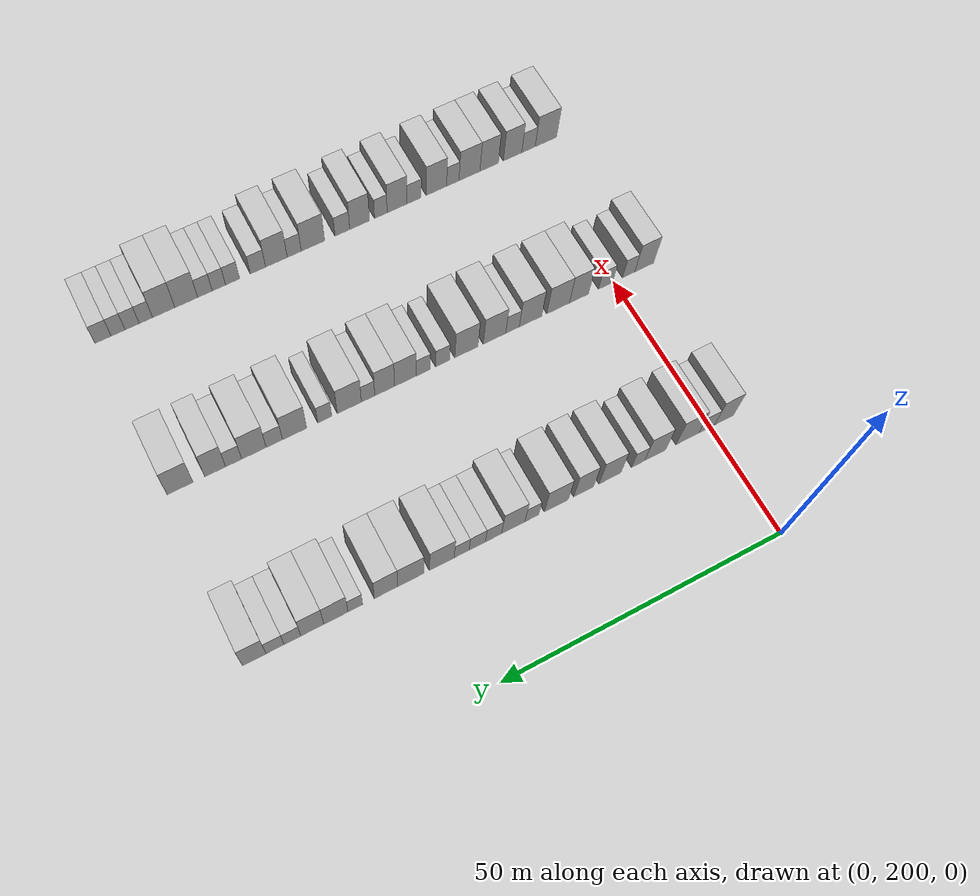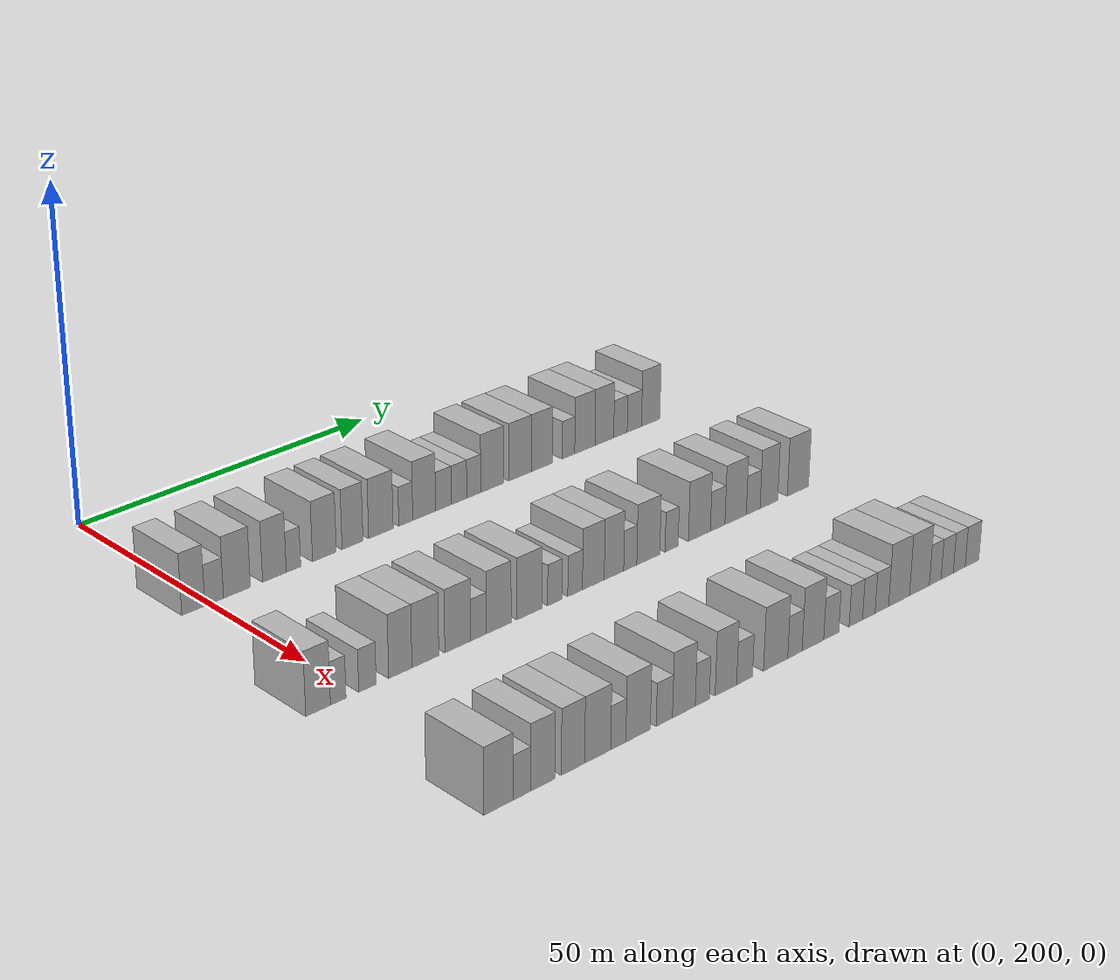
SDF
<sdf version="1.6">
 <world name="default">
  <model name="building_118">
   <static>1</static>
   <pose>25.0000 197.3915 0 0.000000 0.000000 0.000000</pose>
   <link name="link">
    <pose>0 0 4.50 0 0 0</pose>
    <collision name="collision"><geometry><box><size>10.0000 3.6631 9.0000</size></box></geometry></collision>
    <visual name="visual">
     <cast_shadows>0</cast_shadows>
     <geometry><box><size>10.0000 3.6631 9.0000</size></box></geometry>
     <material>
      <script>
       <uri>model://HANNAS_wall/materials/scripts</uri>
       <uri>model://HANNAS_wall/materials/textures</uri>
       <name>vrc/HANNAS_wall</name>
      </script>
     </material>
    </visual>
   </link>
  </model>
  <model name="building_119">
   <static>1</static>
   <pose>25.0000 200.7139 0 0.000000 0.000000 0.000000</pose>
   <link name="link">
    <pose>0 0 3.00 0 0 0</pose>
    <collision name="collision"><geometry><box><size>10.0000 2.9817 6.0000</size></box></geometry></collision>
    <visual name="visual">
     <cast_shadows>0</cast_shadows>
     <geometry><box><size>10.0000 2.9817 6.0000</size></box></geometry>
     <material>
      <script>
       <uri>model://HANNAS_wall/materials/scripts</uri>
       <uri>model://HANNAS_wall/materials/textures</uri>
       <name>vrc/HANNAS_wall</name>
      </script>
     </material>
    </visual>
   </link>
  </model>
  <model name="building_120">
   <static>1</static>
   <pose>25.0000 204.3842 0 0.000000 0.000000 0.000000</pose>
   <link name="link">
    <pose>0 0 4.50 0 0 0</pose>
    <collision name="collision"><geometry><box><size>10.0000 4.3589 9.0000</size></box></geometry></collision>
    <visual name="visual">
     <cast_shadows>0</cast_shadows>
     <geometry><box><size>10.0000 4.3589 9.0000</size></box></geometry>
     <material>
      <script>
       <uri>model://HANNAS_wall/materials/scripts</uri>
       <uri>model://HANNAS_wall/materials/textures</uri>
       <name>vrc/HANNAS_wall</name>
      </script>
     </material>
    </visual>
   </link>
  </model>
  <model name="building_121">
   <static>1</static>
   <pose>25.0000 210.5265 0 0.000000 0.000000 0.000000</pose>
   <link name="link">
    <pose>0 0 4.50 0 0 0</pose>
    <collision name="collision"><geometry><box><size>10.0000 3.9257 9.0000</size></box></geometry></collision>
    <visual name="visual">
     <cast_shadows>0</cast_shadows>
     <geometry><box><size>10.0000 3.9257 9.0000</size></box></geometry>
     <material>
      <script>
       <uri>model://HANNAS_wall/materials/scripts</uri>
       <uri>model://HANNAS_wall/materials/textures</uri>
       <name>vrc/HANNAS_wall</name>
      </script>
     </material>
    </visual>
   </link>
  </model>
  <model name="building_122">
   <static>1</static>
   <pose>25.0000 213.7019 0 0.000000 0.000000 0.000000</pose>
   <link name="link">
    <pose>0 0 3.00 0 0 0</pose>
    <collision name="collision"><geometry><box><size>10.0000 2.4253 6.0000</size></box></geometry></collision>
    <visual name="visual">
     <cast_shadows>0</cast_shadows>
     <geometry><box><size>10.0000 2.4253 6.0000</size></box></geometry>
     <material>
      <script>
       <uri>model://HANNAS_wall/materials/scripts</uri>
       <uri>model://HANNAS_wall/materials/textures</uri>
       <name>vrc/HANNAS_wall</name>
      </script>
     </material>
    </visual>
   </link>
  </model>
  <model name="building_123">
   <static>1</static>
   <pose>25.0000 218.9449 0 0.000000 0.000000 0.000000</pose>
   <link name="link">
    <pose>0 0 4.50 0 0 0</pose>
    <collision name="collision"><geometry><box><size>10.0000 4.0606 9.0000</size></box></geometry></collision>
    <visual name="visual">
     <cast_shadows>0</cast_shadows>
     <geometry><box><size>10.0000 4.0606 9.0000</size></box></geometry>
     <material>
      <script>
       <uri>model://HANNAS_wall/materials/scripts</uri>
       <uri>model://HANNAS_wall/materials/textures</uri>
       <name>vrc/HANNAS_wall</name>
      </script>
     </material>
    </visual>
   </link>
  </model>
  <model name="building_124">
   <static>1</static>
   <pose>25.0000 223.7944 0 0.000000 0.000000 0.000000</pose>
   <link name="link">
    <pose>0 0 4.50 0 0 0</pose>
    <collision name="collision"><geometry><box><size>10.0000 3.6385 9.0000</size></box></geometry></collision>
    <visual name="visual">
     <cast_shadows>0</cast_shadows>
     <geometry><box><size>10.0000 3.6385 9.0000</size></box></geometry>
     <material>
      <script>
       <uri>model://HANNAS_wall/materials/scripts</uri>
       <uri>model://HANNAS_wall/materials/textures</uri>
       <name>vrc/HANNAS_wall</name>
      </script>
     </material>
    </visual>
   </link>
  </model>
  <model name="building_125">
   <static>1</static>
   <pose>25.0000 228.7863 0 0.000000 0.000000 0.000000</pose>
   <link name="link">
    <pose>0 0 4.50 0 0 0</pose>
    <collision name="collision"><geometry><box><size>10.0000 4.3454 9.0000</size></box></geometry></collision>
    <visual name="visual">
     <cast_shadows>0</cast_shadows>
     <geometry><box><size>10.0000 4.3454 9.0000</size></box></geometry>
     <material>
      <script>
       <uri>model://HANNAS_wall/materials/scripts</uri>
       <uri>model://HANNAS_wall/materials/textures</uri>
       <name>vrc/HANNAS_wall</name>
      </script>
     </material>
    </visual>
   </link>
  </model>
  <model name="building_126">
   <static>1</static>
   <pose>25.0000 233.2173 0 0.000000 0.000000 0.000000</pose>
   <link name="link">
    <pose>0 0 3.00 0 0 0</pose>
    <collision name="collision"><geometry><box><size>10.0000 2.5165 6.0000</size></box></geometry></collision>
    <visual name="visual">
     <cast_shadows>0</cast_shadows>
     <geometry><box><size>10.0000 2.5165 6.0000</size></box></geometry>
     <material>
      <script>
       <uri>model://HANNAS_wall/materials/scripts</uri>
       <uri>model://HANNAS_wall/materials/textures</uri>
       <name>vrc/HANNAS_wall</name>
      </script>
     </material>
    </visual>
   </link>
  </model>
  <model name="building_127">
   <static>1</static>
   <pose>25.0000 236.5617 0 0.000000 0.000000 0.000000</pose>
   <link name="link">
    <pose>0 0 4.50 0 0 0</pose>
    <collision name="collision"><geometry><box><size>10.0000 4.1724 9.0000</size></box></geometry></collision>
    <visual name="visual">
     <cast_shadows>0</cast_shadows>
     <geometry><box><size>10.0000 4.1724 9.0000</size></box></geometry>
     <material>
      <script>
       <uri>model://HANNAS_wall/materials/scripts</uri>
       <uri>model://HANNAS_wall/materials/textures</uri>
       <name>vrc/HANNAS_wall</name>
      </script>
     </material>
    </visual>
   </link>
  </model>
  <model name="building_128">
   <static>1</static>
   <pose>25.0000 240.0873 0 0.000000 0.000000 0.000000</pose>
   <link name="link">
    <pose>0 0 3.00 0 0 0</pose>
    <collision name="collision"><geometry><box><size>10.0000 2.8788 6.0000</size></box></geometry></collision>
    <visual name="visual">
     <cast_shadows>0</cast_shadows>
     <geometry><box><size>10.0000 2.8788 6.0000</size></box></geometry>
     <material>
      <script>
       <uri>model://HANNAS_wall/materials/scripts</uri>
       <uri>model://HANNAS_wall/materials/textures</uri>
       <name>vrc/HANNAS_wall</name>
      </script>
     </material>
    </visual>
   </link>
  </model>
  <model name="building_129">
   <static>1</static>
   <pose>25.0000 242.9705 0 0.000000 0.000000 0.000000</pose>
   <link name="link">
    <pose>0 0 3.00 0 0 0</pose>
    <collision name="collision"><geometry><box><size>10.0000 2.8876 6.0000</size></box></geometry></collision>
    <visual name="visual">
     <cast_shadows>0</cast_shadows>
     <geometry><box><size>10.0000 2.8876 6.0000</size></box></geometry>
     <material>
      <script>
       <uri>model://HANNAS_wall/materials/scripts</uri>
       <uri>model://HANNAS_wall/materials/textures</uri>
       <name>vrc/HANNAS_wall</name>
      </script>
     </material>
    </visual>
   </link>
  </model>
  <model name="building_130">
   <static>1</static>
   <pose>25.0000 245.7315 0 0.000000 0.000000 0.000000</pose>
   <link name="link">
    <pose>0 0 3.00 0 0 0</pose>
    <collision name="collision"><geometry><box><size>10.0000 2.6344 6.0000</size></box></geometry></collision>
    <visual name="visual">
     <cast_shadows>0</cast_shadows>
     <geometry><box><size>10.0000 2.6344 6.0000</size></box></geometry>
     <material>
      <script>
       <uri>model://HANNAS_wall/materials/scripts</uri>
       <uri>model://HANNAS_wall/materials/textures</uri>
       <name>vrc/HANNAS_wall</name>
      </script>
     </material>
    </visual>
   </link>
  </model>
  <model name="building_131">
   <static>1</static>
   <pose>25.0000 249.2120 0 0.000000 0.000000 0.000000</pose>
   <link name="link">
    <pose>0 0 4.50 0 0 0</pose>
    <collision name="collision"><geometry><box><size>10.0000 4.3265 9.0000</size></box></geometry></collision>
    <visual name="visual">
     <cast_shadows>0</cast_shadows>
     <geometry><box><size>10.0000 4.3265 9.0000</size></box></geometry>
     <material>
      <script>
       <uri>model://HANNAS_wall/materials/scripts</uri>
       <uri>model://HANNAS_wall/materials/textures</uri>
       <name>vrc/HANNAS_wall</name>
      </script>
     </material>
    </visual>
   </link>
  </model>
  <model name="building_132">
   <static>1</static>
   <pose>25.0000 254.6125 0 0.000000 0.000000 0.000000</pose>
   <link name="link">
    <pose>0 0 4.50 0 0 0</pose>
    <collision name="collision"><geometry><box><size>10.0000 4.4747 9.0000</size></box></geometry></collision>
    <visual name="visual">
     <cast_shadows>0</cast_shadows>
     <geometry><box><size>10.0000 4.4747 9.0000</size></box></geometry>
     <material>
      <script>
       <uri>model://HANNAS_wall/materials/scripts</uri>
       <uri>model://HANNAS_wall/materials/textures</uri>
       <name>vrc/HANNAS_wall</name>
      </script>
     </material>
    </visual>
   </link>
  </model>
  <model name="building_133">
   <static>1</static>
   <pose>25.0000 258.8534 0 0.000000 0.000000 0.000000</pose>
   <link name="link">
    <pose>0 0 4.50 0 0 0</pose>
    <collision name="collision"><geometry><box><size>10.0000 4.0072 9.0000</size></box></geometry></collision>
    <visual name="visual">
     <cast_shadows>0</cast_shadows>
     <geometry><box><size>10.0000 4.0072 9.0000</size></box></geometry>
     <material>
      <script>
       <uri>model://HANNAS_wall/materials/scripts</uri>
       <uri>model://HANNAS_wall/materials/textures</uri>
       <name>vrc/HANNAS_wall</name>
      </script>
     </material>
    </visual>
   </link>
  </model>
  <model name="building_134">
   <static>1</static>
   <pose>25.0000 264.0975 0 0.000000 0.000000 0.000000</pose>
   <link name="link">
    <pose>0 0 3.00 0 0 0</pose>
    <collision name="collision"><geometry><box><size>10.0000 2.4809 6.0000</size></box></geometry></collision>
    <visual name="visual">
     <cast_shadows>0</cast_shadows>
     <geometry><box><size>10.0000 2.4809 6.0000</size></box></geometry>
     <material>
      <script>
       <uri>model://HANNAS_wall/materials/scripts</uri>
       <uri>model://HANNAS_wall/materials/textures</uri>
       <name>vrc/HANNAS_wall</name>
      </script>
     </material>
    </visual>
   </link>
  </model>
  <model name="building_135">
   <static>1</static>
   <pose>25.0000 267.3804 0 0.000000 0.000000 0.000000</pose>
   <link name="link">
    <pose>0 0 4.50 0 0 0</pose>
    <collision name="collision"><geometry><box><size>10.0000 4.0848 9.0000</size></box></geometry></collision>
    <visual name="visual">
     <cast_shadows>0</cast_shadows>
     <geometry><box><size>10.0000 4.0848 9.0000</size></box></geometry>
     <material>
      <script>
       <uri>model://HANNAS_wall/materials/scripts</uri>
       <uri>model://HANNAS_wall/materials/textures</uri>
       <name>vrc/HANNAS_wall</name>
      </script>
     </material>
    </visual>
   </link>
  </model>
  <model name="building_136">
   <static>1</static>
   <pose>25.0000 271.3486 0 0.000000 0.000000 0.000000</pose>
   <link name="link">
    <pose>0 0 4.50 0 0 0</pose>
    <collision name="collision"><geometry><box><size>10.0000 3.8515 9.0000</size></box></geometry></collision>
    <visual name="visual">
     <cast_shadows>0</cast_shadows>
     <geometry><box><size>10.0000 3.8515 9.0000</size></box></geometry>
     <material>
      <script>
       <uri>model://HANNAS_wall/materials/scripts</uri>
       <uri>model://HANNAS_wall/materials/textures</uri>
       <name>vrc/HANNAS_wall</name>
      </script>
     </material>
    </visual>
   </link>
  </model>
  <model name="building_137">
   <static>1</static>
   <pose>25.0000 274.6631 0 0.000000 0.000000 0.000000</pose>
   <link name="link">
    <pose>0 0 3.00 0 0 0</pose>
    <collision name="collision"><geometry><box><size>10.0000 2.7775 6.0000</size></box></geometry></collision>
    <visual name="visual">
     <cast_shadows>0</cast_shadows>
     <geometry><box><size>10.0000 2.7775 6.0000</size></box></geometry>
     <material>
      <script>
       <uri>model://HANNAS_wall/materials/scripts</uri>
       <uri>model://HANNAS_wall/materials/textures</uri>
       <name>vrc/HANNAS_wall</name>
      </script>
     </material>
    </visual>
   </link>
  </model>
  <model name="building_138">
   <static>1</static>
   <pose>25.0000 277.5473 0 0.000000 0.000000 0.000000</pose>
   <link name="link">
    <pose>0 0 3.00 0 0 0</pose>
    <collision name="collision"><geometry><box><size>10.0000 2.9910 6.0000</size></box></geometry></collision>
    <visual name="visual">
     <cast_shadows>0</cast_shadows>
     <geometry><box><size>10.0000 2.9910 6.0000</size></box></geometry>
     <material>
      <script>
       <uri>model://HANNAS_wall/materials/scripts</uri>
       <uri>model://HANNAS_wall/materials/textures</uri>
       <name>vrc/HANNAS_wall</name>
      </script>
     </material>
    </visual>
   </link>
  </model>
  <model name="building_139">
   <static>1</static>
   <pose>25.0000 280.9775 0 0.000000 0.000000 0.000000</pose>
   <link name="link">
    <pose>0 0 4.50 0 0 0</pose>
    <collision name="collision"><geometry><box><size>10.0000 3.8694 9.0000</size></box></geometry></collision>
    <visual name="visual">
     <cast_shadows>0</cast_shadows>
     <geometry><box><size>10.0000 3.8694 9.0000</size></box></geometry>
     <material>
      <script>
       <uri>model://HANNAS_wall/materials/scripts</uri>
       <uri>model://HANNAS_wall/materials/textures</uri>
       <name>vrc/HANNAS_wall</name>
      </script>
     </material>
    </visual>
   </link>
  </model>
  <model name="building_258">
   <static>1</static>
   <pose>55.0000 193.9920 0 0.000000 0.000000 0.000000</pose>
   <link name="link">
    <pose>0 0 4.50 0 0 0</pose>
    <collision name="collision"><geometry><box><size>10.0000 3.7857 9.0000</size></box></geometry></collision>
    <visual name="visual">
     <cast_shadows>0</cast_shadows>
     <geometry><box><size>10.0000 3.7857 9.0000</size></box></geometry>
     <material>
      <script>
       <uri>model://HANNAS_wall/materials/scripts</uri>
       <uri>model://HANNAS_wall/materials/textures</uri>
       <name>vrc/HANNAS_wall</name>
      </script>
     </material>
    </visual>
   </link>
  </model>
  <model name="building_259">
   <static>1</static>
   <pose>55.0000 197.0900 0 0.000000 0.000000 0.000000</pose>
   <link name="link">
    <pose>0 0 3.00 0 0 0</pose>
    <collision name="collision"><geometry><box><size>10.0000 2.4102 6.0000</size></box></geometry></collision>
    <visual name="visual">
     <cast_shadows>0</cast_shadows>
     <geometry><box><size>10.0000 2.4102 6.0000</size></box></geometry>
     <material>
      <script>
       <uri>model://HANNAS_wall/materials/scripts</uri>
       <uri>model://HANNAS_wall/materials/textures</uri>
       <name>vrc/HANNAS_wall</name>
      </script>
     </material>
    </visual>
   </link>
  </model>
  <model name="building_260">
   <static>1</static>
   <pose>55.0000 201.6686 0 0.000000 0.000000 0.000000</pose>
   <link name="link">
    <pose>0 0 3.00 0 0 0</pose>
    <collision name="collision"><geometry><box><size>10.0000 2.7471 6.0000</size></box></geometry></collision>
    <visual name="visual">
     <cast_shadows>0</cast_shadows>
     <geometry><box><size>10.0000 2.7471 6.0000</size></box></geometry>
     <material>
      <script>
       <uri>model://HANNAS_wall/materials/scripts</uri>
       <uri>model://HANNAS_wall/materials/textures</uri>
       <name>vrc/HANNAS_wall</name>
      </script>
     </material>
    </visual>
   </link>
  </model>
  <model name="building_261">
   <static>1</static>
   <pose>55.0000 206.9123 0 0.000000 0.000000 0.000000</pose>
   <link name="link">
    <pose>0 0 4.50 0 0 0</pose>
    <collision name="collision"><geometry><box><size>10.0000 3.7403 9.0000</size></box></geometry></collision>
    <visual name="visual">
     <cast_shadows>0</cast_shadows>
     <geometry><box><size>10.0000 3.7403 9.0000</size></box></geometry>
     <material>
      <script>
       <uri>model://HANNAS_wall/materials/scripts</uri>
       <uri>model://HANNAS_wall/materials/textures</uri>
       <name>vrc/HANNAS_wall</name>
      </script>
     </material>
    </visual>
   </link>
  </model>
  <model name="building_262">
   <static>1</static>
   <pose>55.0000 210.9835 0 0.000000 0.000000 0.000000</pose>
   <link name="link">
    <pose>0 0 4.50 0 0 0</pose>
    <collision name="collision"><geometry><box><size>10.0000 4.4022 9.0000</size></box></geometry></collision>
    <visual name="visual">
     <cast_shadows>0</cast_shadows>
     <geometry><box><size>10.0000 4.4022 9.0000</size></box></geometry>
     <material>
      <script>
       <uri>model://HANNAS_wall/materials/scripts</uri>
       <uri>model://HANNAS_wall/materials/textures</uri>
       <name>vrc/HANNAS_wall</name>
      </script>
     </material>
    </visual>
   </link>
  </model>
  <model name="building_263">
   <static>1</static>
   <pose>55.0000 216.3512 0 0.000000 0.000000 0.000000</pose>
   <link name="link">
    <pose>0 0 4.50 0 0 0</pose>
    <collision name="collision"><geometry><box><size>10.0000 4.3332 9.0000</size></box></geometry></collision>
    <visual name="visual">
     <cast_shadows>0</cast_shadows>
     <geometry><box><size>10.0000 4.3332 9.0000</size></box></geometry>
     <material>
      <script>
       <uri>model://HANNAS_wall/materials/scripts</uri>
       <uri>model://HANNAS_wall/materials/textures</uri>
       <name>vrc/HANNAS_wall</name>
      </script>
     </material>
    </visual>
   </link>
  </model>
  <model name="building_264">
   <static>1</static>
   <pose>55.0000 219.8237 0 0.000000 0.000000 0.000000</pose>
   <link name="link">
    <pose>0 0 3.00 0 0 0</pose>
    <collision name="collision"><geometry><box><size>10.0000 2.6118 6.0000</size></box></geometry></collision>
    <visual name="visual">
     <cast_shadows>0</cast_shadows>
     <geometry><box><size>10.0000 2.6118 6.0000</size></box></geometry>
     <material>
      <script>
       <uri>model://HANNAS_wall/materials/scripts</uri>
       <uri>model://HANNAS_wall/materials/textures</uri>
       <name>vrc/HANNAS_wall</name>
      </script>
     </material>
    </visual>
   </link>
  </model>
  <model name="building_265">
   <static>1</static>
   <pose>55.0000 223.2672 0 0.000000 0.000000 0.000000</pose>
   <link name="link">
    <pose>0 0 4.50 0 0 0</pose>
    <collision name="collision"><geometry><box><size>10.0000 4.2752 9.0000</size></box></geometry></collision>
    <visual name="visual">
     <cast_shadows>0</cast_shadows>
     <geometry><box><size>10.0000 4.2752 9.0000</size></box></geometry>
     <material>
      <script>
       <uri>model://HANNAS_wall/materials/scripts</uri>
       <uri>model://HANNAS_wall/materials/textures</uri>
       <name>vrc/HANNAS_wall</name>
      </script>
     </material>
    </visual>
   </link>
  </model>
  <model name="building_266">
   <static>1</static>
   <pose>55.0000 228.5992 0 0.000000 0.000000 0.000000</pose>
   <link name="link">
    <pose>0 0 4.50 0 0 0</pose>
    <collision name="collision"><geometry><box><size>10.0000 4.3890 9.0000</size></box></geometry></collision>
    <visual name="visual">
     <cast_shadows>0</cast_shadows>
     <geometry><box><size>10.0000 4.3890 9.0000</size></box></geometry>
     <material>
      <script>
       <uri>model://HANNAS_wall/materials/scripts</uri>
       <uri>model://HANNAS_wall/materials/textures</uri>
       <name>vrc/HANNAS_wall</name>
      </script>
     </material>
    </visual>
   </link>
  </model>
  <model name="building_267">
   <static>1</static>
   <pose>55.0000 233.0921 0 0.000000 0.000000 0.000000</pose>
   <link name="link">
    <pose>0 0 3.00 0 0 0</pose>
    <collision name="collision"><geometry><box><size>10.0000 2.5968 6.0000</size></box></geometry></collision>
    <visual name="visual">
     <cast_shadows>0</cast_shadows>
     <geometry><box><size>10.0000 2.5968 6.0000</size></box></geometry>
     <material>
      <script>
       <uri>model://HANNAS_wall/materials/scripts</uri>
       <uri>model://HANNAS_wall/materials/textures</uri>
       <name>vrc/HANNAS_wall</name>
      </script>
     </material>
    </visual>
   </link>
  </model>
  <model name="building_268">
   <static>1</static>
   <pose>55.0000 236.7168 0 0.000000 0.000000 0.000000</pose>
   <link name="link">
    <pose>0 0 3.00 0 0 0</pose>
    <collision name="collision"><geometry><box><size>10.0000 2.6526 6.0000</size></box></geometry></collision>
    <visual name="visual">
     <cast_shadows>0</cast_shadows>
     <geometry><box><size>10.0000 2.6526 6.0000</size></box></geometry>
     <material>
      <script>
       <uri>model://HANNAS_wall/materials/scripts</uri>
       <uri>model://HANNAS_wall/materials/textures</uri>
       <name>vrc/HANNAS_wall</name>
      </script>
     </material>
    </visual>
   </link>
  </model>
  <model name="building_269">
   <static>1</static>
   <pose>55.0000 240.0320 0 0.000000 0.000000 0.000000</pose>
   <link name="link">
    <pose>0 0 4.50 0 0 0</pose>
    <collision name="collision"><geometry><box><size>10.0000 3.9778 9.0000</size></box></geometry></collision>
    <visual name="visual">
     <cast_shadows>0</cast_shadows>
     <geometry><box><size>10.0000 3.9778 9.0000</size></box></geometry>
     <material>
      <script>
       <uri>model://HANNAS_wall/materials/scripts</uri>
       <uri>model://HANNAS_wall/materials/textures</uri>
       <name>vrc/HANNAS_wall</name>
      </script>
     </material>
    </visual>
   </link>
  </model>
  <model name="building_270">
   <static>1</static>
   <pose>55.0000 243.8210 0 0.000000 0.000000 0.000000</pose>
   <link name="link">
    <pose>0 0 4.50 0 0 0</pose>
    <collision name="collision"><geometry><box><size>10.0000 3.6003 9.0000</size></box></geometry></collision>
    <visual name="visual">
     <cast_shadows>0</cast_shadows>
     <geometry><box><size>10.0000 3.6003 9.0000</size></box></geometry>
     <material>
      <script>
       <uri>model://HANNAS_wall/materials/scripts</uri>
       <uri>model://HANNAS_wall/materials/textures</uri>
       <name>vrc/HANNAS_wall</name>
      </script>
     </material>
    </visual>
   </link>
  </model>
  <model name="building_271">
   <static>1</static>
   <pose>55.0000 246.8459 0 0.000000 0.000000 0.000000</pose>
   <link name="link">
    <pose>0 0 3.00 0 0 0</pose>
    <collision name="collision"><geometry><box><size>10.0000 2.4494 6.0000</size></box></geometry></collision>
    <visual name="visual">
     <cast_shadows>0</cast_shadows>
     <geometry><box><size>10.0000 2.4494 6.0000</size></box></geometry>
     <material>
      <script>
       <uri>model://HANNAS_wall/materials/scripts</uri>
       <uri>model://HANNAS_wall/materials/textures</uri>
       <name>vrc/HANNAS_wall</name>
      </script>
     </material>
    </visual>
   </link>
  </model>
  <model name="building_272">
   <static>1</static>
   <pose>55.0000 250.2554 0 0.000000 0.000000 0.000000</pose>
   <link name="link">
    <pose>0 0 4.50 0 0 0</pose>
    <collision name="collision"><geometry><box><size>10.0000 4.3697 9.0000</size></box></geometry></collision>
    <visual name="visual">
     <cast_shadows>0</cast_shadows>
     <geometry><box><size>10.0000 4.3697 9.0000</size></box></geometry>
     <material>
      <script>
       <uri>model://HANNAS_wall/materials/scripts</uri>
       <uri>model://HANNAS_wall/materials/textures</uri>
       <name>vrc/HANNAS_wall</name>
      </script>
     </material>
    </visual>
   </link>
  </model>
  <model name="building_273">
   <static>1</static>
   <pose>55.0000 254.6990 0 0.000000 0.000000 0.000000</pose>
   <link name="link">
    <pose>0 0 3.00 0 0 0</pose>
    <collision name="collision"><geometry><box><size>10.0000 2.5176 6.0000</size></box></geometry></collision>
    <visual name="visual">
     <cast_shadows>0</cast_shadows>
     <geometry><box><size>10.0000 2.5176 6.0000</size></box></geometry>
     <material>
      <script>
       <uri>model://HANNAS_wall/materials/scripts</uri>
       <uri>model://HANNAS_wall/materials/textures</uri>
       <name>vrc/HANNAS_wall</name>
      </script>
     </material>
    </visual>
   </link>
  </model>
  <model name="building_274">
   <static>1</static>
   <pose>55.0000 260.1152 0 0.000000 0.000000 0.000000</pose>
   <link name="link">
    <pose>0 0 4.50 0 0 0</pose>
    <collision name="collision"><geometry><box><size>10.0000 4.3148 9.0000</size></box></geometry></collision>
    <visual name="visual">
     <cast_shadows>0</cast_shadows>
     <geometry><box><size>10.0000 4.3148 9.0000</size></box></geometry>
     <material>
      <script>
       <uri>model://HANNAS_wall/materials/scripts</uri>
       <uri>model://HANNAS_wall/materials/textures</uri>
       <name>vrc/HANNAS_wall</name>
      </script>
     </material>
    </visual>
   </link>
  </model>
  <model name="building_275">
   <static>1</static>
   <pose>55.0000 263.7176 0 0.000000 0.000000 0.000000</pose>
   <link name="link">
    <pose>0 0 3.00 0 0 0</pose>
    <collision name="collision"><geometry><box><size>10.0000 2.8900 6.0000</size></box></geometry></collision>
    <visual name="visual">
     <cast_shadows>0</cast_shadows>
     <geometry><box><size>10.0000 2.8900 6.0000</size></box></geometry>
     <material>
      <script>
       <uri>model://HANNAS_wall/materials/scripts</uri>
       <uri>model://HANNAS_wall/materials/textures</uri>
       <name>vrc/HANNAS_wall</name>
      </script>
     </material>
    </visual>
   </link>
  </model>
  <model name="building_276">
   <static>1</static>
   <pose>55.0000 267.3148 0 0.000000 0.000000 0.000000</pose>
   <link name="link">
    <pose>0 0 4.50 0 0 0</pose>
    <collision name="collision"><geometry><box><size>10.0000 4.3044 9.0000</size></box></geometry></collision>
    <visual name="visual">
     <cast_shadows>0</cast_shadows>
     <geometry><box><size>10.0000 4.3044 9.0000</size></box></geometry>
     <material>
      <script>
       <uri>model://HANNAS_wall/materials/scripts</uri>
       <uri>model://HANNAS_wall/materials/textures</uri>
       <name>vrc/HANNAS_wall</name>
      </script>
     </material>
    </visual>
   </link>
  </model>
  <model name="building_277">
   <static>1</static>
   <pose>55.0000 270.8719 0 0.000000 0.000000 0.000000</pose>
   <link name="link">
    <pose>0 0 3.00 0 0 0</pose>
    <collision name="collision"><geometry><box><size>10.0000 2.8098 6.0000</size></box></geometry></collision>
    <visual name="visual">
     <cast_shadows>0</cast_shadows>
     <geometry><box><size>10.0000 2.8098 6.0000</size></box></geometry>
     <material>
      <script>
       <uri>model://HANNAS_wall/materials/scripts</uri>
       <uri>model://HANNAS_wall/materials/textures</uri>
       <name>vrc/HANNAS_wall</name>
      </script>
     </material>
    </visual>
   </link>
  </model>
  <model name="building_278">
   <static>1</static>
   <pose>55.0000 274.0915 0 0.000000 0.000000 0.000000</pose>
   <link name="link">
    <pose>0 0 4.50 0 0 0</pose>
    <collision name="collision"><geometry><box><size>10.0000 3.6293 9.0000</size></box></geometry></collision>
    <visual name="visual">
     <cast_shadows>0</cast_shadows>
     <geometry><box><size>10.0000 3.6293 9.0000</size></box></geometry>
     <material>
      <script>
       <uri>model://HANNAS_wall/materials/scripts</uri>
       <uri>model://HANNAS_wall/materials/textures</uri>
       <name>vrc/HANNAS_wall</name>
      </script>
     </material>
    </visual>
   </link>
  </model>
  <model name="building_279">
   <static>1</static>
   <pose>55.0000 280.1415 0 0.000000 0.000000 0.000000</pose>
   <link name="link">
    <pose>0 0 4.50 0 0 0</pose>
    <collision name="collision"><geometry><box><size>10.0000 4.4707 9.0000</size></box></geometry></collision>
    <visual name="visual">
     <cast_shadows>0</cast_shadows>
     <geometry><box><size>10.0000 4.4707 9.0000</size></box></geometry>
     <material>
      <script>
       <uri>model://HANNAS_wall/materials/scripts</uri>
       <uri>model://HANNAS_wall/materials/textures</uri>
       <name>vrc/HANNAS_wall</name>
      </script>
     </material>
    </visual>
   </link>
  </model>
  <model name="building_389">
   <static>1</static>
   <pose>85.0000 196.0585 0 0.000000 0.000000 0.000000</pose>
   <link name="link">
    <pose>0 0 4.50 0 0 0</pose>
    <collision name="collision"><geometry><box><size>10.0000 4.4190 9.0000</size></box></geometry></collision>
    <visual name="visual">
     <cast_shadows>0</cast_shadows>
     <geometry><box><size>10.0000 4.4190 9.0000</size></box></geometry>
     <material>
      <script>
       <uri>model://HANNAS_wall/materials/scripts</uri>
       <uri>model://HANNAS_wall/materials/textures</uri>
       <name>vrc/HANNAS_wall</name>
      </script>
     </material>
    </visual>
   </link>
  </model>
  <model name="building_390">
   <static>1</static>
   <pose>85.0000 199.6556 0 0.000000 0.000000 0.000000</pose>
   <link name="link">
    <pose>0 0 3.00 0 0 0</pose>
    <collision name="collision"><geometry><box><size>10.0000 2.7754 6.0000</size></box></geometry></collision>
    <visual name="visual">
     <cast_shadows>0</cast_shadows>
     <geometry><box><size>10.0000 2.7754 6.0000</size></box></geometry>
     <material>
      <script>
       <uri>model://HANNAS_wall/materials/scripts</uri>
       <uri>model://HANNAS_wall/materials/textures</uri>
       <name>vrc/HANNAS_wall</name>
      </script>
     </material>
    </visual>
   </link>
  </model>
  <model name="building_391">
   <static>1</static>
   <pose>85.0000 202.9300 0 0.000000 0.000000 0.000000</pose>
   <link name="link">
    <pose>0 0 4.50 0 0 0</pose>
    <collision name="collision"><geometry><box><size>10.0000 3.7733 9.0000</size></box></geometry></collision>
    <visual name="visual">
     <cast_shadows>0</cast_shadows>
     <geometry><box><size>10.0000 3.7733 9.0000</size></box></geometry>
     <material>
      <script>
       <uri>model://HANNAS_wall/materials/scripts</uri>
       <uri>model://HANNAS_wall/materials/textures</uri>
       <name>vrc/HANNAS_wall</name>
      </script>
     </material>
    </visual>
   </link>
  </model>
  <model name="building_392">
   <static>1</static>
   <pose>85.0000 207.6820 0 0.000000 0.000000 0.000000</pose>
   <link name="link">
    <pose>0 0 4.50 0 0 0</pose>
    <collision name="collision"><geometry><box><size>10.0000 3.7307 9.0000</size></box></geometry></collision>
    <visual name="visual">
     <cast_shadows>0</cast_shadows>
     <geometry><box><size>10.0000 3.7307 9.0000</size></box></geometry>
     <material>
      <script>
       <uri>model://HANNAS_wall/materials/scripts</uri>
       <uri>model://HANNAS_wall/materials/textures</uri>
       <name>vrc/HANNAS_wall</name>
      </script>
     </material>
    </visual>
   </link>
  </model>
  <model name="building_393">
   <static>1</static>
   <pose>85.0000 211.6618 0 0.000000 0.000000 0.000000</pose>
   <link name="link">
    <pose>0 0 4.50 0 0 0</pose>
    <collision name="collision"><geometry><box><size>10.0000 4.2290 9.0000</size></box></geometry></collision>
    <visual name="visual">
     <cast_shadows>0</cast_shadows>
     <geometry><box><size>10.0000 4.2290 9.0000</size></box></geometry>
     <material>
      <script>
       <uri>model://HANNAS_wall/materials/scripts</uri>
       <uri>model://HANNAS_wall/materials/textures</uri>
       <name>vrc/HANNAS_wall</name>
      </script>
     </material>
    </visual>
   </link>
  </model>
  <model name="building_394">
   <static>1</static>
   <pose>85.0000 215.0228 0 0.000000 0.000000 0.000000</pose>
   <link name="link">
    <pose>0 0 3.00 0 0 0</pose>
    <collision name="collision"><geometry><box><size>10.0000 2.4929 6.0000</size></box></geometry></collision>
    <visual name="visual">
     <cast_shadows>0</cast_shadows>
     <geometry><box><size>10.0000 2.4929 6.0000</size></box></geometry>
     <material>
      <script>
       <uri>model://HANNAS_wall/materials/scripts</uri>
       <uri>model://HANNAS_wall/materials/textures</uri>
       <name>vrc/HANNAS_wall</name>
      </script>
     </material>
    </visual>
   </link>
  </model>
  <model name="building_395">
   <static>1</static>
   <pose>85.0000 218.3076 0 0.000000 0.000000 0.000000</pose>
   <link name="link">
    <pose>0 0 4.50 0 0 0</pose>
    <collision name="collision"><geometry><box><size>10.0000 4.0768 9.0000</size></box></geometry></collision>
    <visual name="visual">
     <cast_shadows>0</cast_shadows>
     <geometry><box><size>10.0000 4.0768 9.0000</size></box></geometry>
     <material>
      <script>
       <uri>model://HANNAS_wall/materials/scripts</uri>
       <uri>model://HANNAS_wall/materials/textures</uri>
       <name>vrc/HANNAS_wall</name>
      </script>
     </material>
    </visual>
   </link>
  </model>
  <model name="building_396">
   <static>1</static>
   <pose>85.0000 222.7314 0 0.000000 0.000000 0.000000</pose>
   <link name="link">
    <pose>0 0 3.00 0 0 0</pose>
    <collision name="collision"><geometry><box><size>10.0000 2.7706 6.0000</size></box></geometry></collision>
    <visual name="visual">
     <cast_shadows>0</cast_shadows>
     <geometry><box><size>10.0000 2.7706 6.0000</size></box></geometry>
     <material>
      <script>
       <uri>model://HANNAS_wall/materials/scripts</uri>
       <uri>model://HANNAS_wall/materials/textures</uri>
       <name>vrc/HANNAS_wall</name>
      </script>
     </material>
    </visual>
   </link>
  </model>
  <model name="building_397">
   <static>1</static>
   <pose>85.0000 226.0817 0 0.000000 0.000000 0.000000</pose>
   <link name="link">
    <pose>0 0 4.50 0 0 0</pose>
    <collision name="collision"><geometry><box><size>10.0000 3.9299 9.0000</size></box></geometry></collision>
    <visual name="visual">
     <cast_shadows>0</cast_shadows>
     <geometry><box><size>10.0000 3.9299 9.0000</size></box></geometry>
     <material>
      <script>
       <uri>model://HANNAS_wall/materials/scripts</uri>
       <uri>model://HANNAS_wall/materials/textures</uri>
       <name>vrc/HANNAS_wall</name>
      </script>
     </material>
    </visual>
   </link>
  </model>
  <model name="building_398">
   <static>1</static>
   <pose>85.0000 229.2808 0 0.000000 0.000000 0.000000</pose>
   <link name="link">
    <pose>0 0 3.00 0 0 0</pose>
    <collision name="collision"><geometry><box><size>10.0000 2.4684 6.0000</size></box></geometry></collision>
    <visual name="visual">
     <cast_shadows>0</cast_shadows>
     <geometry><box><size>10.0000 2.4684 6.0000</size></box></geometry>
     <material>
      <script>
       <uri>model://HANNAS_wall/materials/scripts</uri>
       <uri>model://HANNAS_wall/materials/textures</uri>
       <name>vrc/HANNAS_wall</name>
      </script>
     </material>
    </visual>
   </link>
  </model>
  <model name="building_399">
   <static>1</static>
   <pose>85.0000 233.4238 0 0.000000 0.000000 0.000000</pose>
   <link name="link">
    <pose>0 0 4.50 0 0 0</pose>
    <collision name="collision"><geometry><box><size>10.0000 3.8176 9.0000</size></box></geometry></collision>
    <visual name="visual">
     <cast_shadows>0</cast_shadows>
     <geometry><box><size>10.0000 3.8176 9.0000</size></box></geometry>
     <material>
      <script>
       <uri>model://HANNAS_wall/materials/scripts</uri>
       <uri>model://HANNAS_wall/materials/textures</uri>
       <name>vrc/HANNAS_wall</name>
      </script>
     </material>
    </visual>
   </link>
  </model>
  <model name="building_400">
   <static>1</static>
   <pose>85.0000 236.7569 0 0.000000 0.000000 0.000000</pose>
   <link name="link">
    <pose>0 0 3.00 0 0 0</pose>
    <collision name="collision"><geometry><box><size>10.0000 2.8487 6.0000</size></box></geometry></collision>
    <visual name="visual">
     <cast_shadows>0</cast_shadows>
     <geometry><box><size>10.0000 2.8487 6.0000</size></box></geometry>
     <material>
      <script>
       <uri>model://HANNAS_wall/materials/scripts</uri>
       <uri>model://HANNAS_wall/materials/textures</uri>
       <name>vrc/HANNAS_wall</name>
      </script>
     </material>
    </visual>
   </link>
  </model>
  <model name="building_401">
   <static>1</static>
   <pose>85.0000 242.4054 0 0.000000 0.000000 0.000000</pose>
   <link name="link">
    <pose>0 0 4.50 0 0 0</pose>
    <collision name="collision"><geometry><box><size>10.0000 4.4481 9.0000</size></box></geometry></collision>
    <visual name="visual">
     <cast_shadows>0</cast_shadows>
     <geometry><box><size>10.0000 4.4481 9.0000</size></box></geometry>
     <material>
      <script>
       <uri>model://HANNAS_wall/materials/scripts</uri>
       <uri>model://HANNAS_wall/materials/textures</uri>
       <name>vrc/HANNAS_wall</name>
      </script>
     </material>
    </visual>
   </link>
  </model>
  <model name="building_402">
   <static>1</static>
   <pose>85.0000 245.9676 0 0.000000 0.000000 0.000000</pose>
   <link name="link">
    <pose>0 0 3.00 0 0 0</pose>
    <collision name="collision"><geometry><box><size>10.0000 2.6763 6.0000</size></box></geometry></collision>
    <visual name="visual">
     <cast_shadows>0</cast_shadows>
     <geometry><box><size>10.0000 2.6763 6.0000</size></box></geometry>
     <material>
      <script>
       <uri>model://HANNAS_wall/materials/scripts</uri>
       <uri>model://HANNAS_wall/materials/textures</uri>
       <name>vrc/HANNAS_wall</name>
      </script>
     </material>
    </visual>
   </link>
  </model>
  <model name="building_403">
   <static>1</static>
   <pose>85.0000 249.3505 0 0.000000 0.000000 0.000000</pose>
   <link name="link">
    <pose>0 0 4.50 0 0 0</pose>
    <collision name="collision"><geometry><box><size>10.0000 4.0895 9.0000</size></box></geometry></collision>
    <visual name="visual">
     <cast_shadows>0</cast_shadows>
     <geometry><box><size>10.0000 4.0895 9.0000</size></box></geometry>
     <material>
      <script>
       <uri>model://HANNAS_wall/materials/scripts</uri>
       <uri>model://HANNAS_wall/materials/textures</uri>
       <name>vrc/HANNAS_wall</name>
      </script>
     </material>
    </visual>
   </link>
  </model>
  <model name="building_404">
   <static>1</static>
   <pose>85.0000 252.8339 0 0.000000 0.000000 0.000000</pose>
   <link name="link">
    <pose>0 0 3.00 0 0 0</pose>
    <collision name="collision"><geometry><box><size>10.0000 2.8774 6.0000</size></box></geometry></collision>
    <visual name="visual">
     <cast_shadows>0</cast_shadows>
     <geometry><box><size>10.0000 2.8774 6.0000</size></box></geometry>
     <material>
      <script>
       <uri>model://HANNAS_wall/materials/scripts</uri>
       <uri>model://HANNAS_wall/materials/textures</uri>
       <name>vrc/HANNAS_wall</name>
      </script>
     </material>
    </visual>
   </link>
  </model>
  <model name="building_405">
   <static>1</static>
   <pose>85.0000 257.5823 0 0.000000 0.000000 0.000000</pose>
   <link name="link">
    <pose>0 0 3.00 0 0 0</pose>
    <collision name="collision"><geometry><box><size>10.0000 2.6195 6.0000</size></box></geometry></collision>
    <visual name="visual">
     <cast_shadows>0</cast_shadows>
     <geometry><box><size>10.0000 2.6195 6.0000</size></box></geometry>
     <material>
      <script>
       <uri>model://HANNAS_wall/materials/scripts</uri>
       <uri>model://HANNAS_wall/materials/textures</uri>
       <name>vrc/HANNAS_wall</name>
      </script>
     </material>
    </visual>
   </link>
  </model>
  <model name="building_406">
   <static>1</static>
   <pose>85.0000 260.1228 0 0.000000 0.000000 0.000000</pose>
   <link name="link">
    <pose>0 0 3.00 0 0 0</pose>
    <collision name="collision"><geometry><box><size>10.0000 2.4615 6.0000</size></box></geometry></collision>
    <visual name="visual">
     <cast_shadows>0</cast_shadows>
     <geometry><box><size>10.0000 2.4615 6.0000</size></box></geometry>
     <material>
      <script>
       <uri>model://HANNAS_wall/materials/scripts</uri>
       <uri>model://HANNAS_wall/materials/textures</uri>
       <name>vrc/HANNAS_wall</name>
      </script>
     </material>
    </visual>
   </link>
  </model>
  <model name="building_407">
   <static>1</static>
   <pose>85.0000 262.6974 0 0.000000 0.000000 0.000000</pose>
   <link name="link">
    <pose>0 0 3.00 0 0 0</pose>
    <collision name="collision"><geometry><box><size>10.0000 2.6876 6.0000</size></box></geometry></collision>
    <visual name="visual">
     <cast_shadows>0</cast_shadows>
     <geometry><box><size>10.0000 2.6876 6.0000</size></box></geometry>
     <material>
      <script>
       <uri>model://HANNAS_wall/materials/scripts</uri>
       <uri>model://HANNAS_wall/materials/textures</uri>
       <name>vrc/HANNAS_wall</name>
      </script>
     </material>
    </visual>
   </link>
  </model>
  <model name="building_408">
   <static>1</static>
   <pose>85.0000 266.1357 0 0.000000 0.000000 0.000000</pose>
   <link name="link">
    <pose>0 0 4.50 0 0 0</pose>
    <collision name="collision"><geometry><box><size>10.0000 4.1890 9.0000</size></box></geometry></collision>
    <visual name="visual">
     <cast_shadows>0</cast_shadows>
     <geometry><box><size>10.0000 4.1890 9.0000</size></box></geometry>
     <material>
      <script>
       <uri>model://HANNAS_wall/materials/scripts</uri>
       <uri>model://HANNAS_wall/materials/textures</uri>
       <name>vrc/HANNAS_wall</name>
      </script>
     </material>
    </visual>
   </link>
  </model>
  <model name="building_409">
   <static>1</static>
   <pose>85.0000 270.2638 0 0.000000 0.000000 0.000000</pose>
   <link name="link">
    <pose>0 0 4.50 0 0 0</pose>
    <collision name="collision"><geometry><box><size>10.0000 4.0671 9.0000</size></box></geometry></collision>
    <visual name="visual">
     <cast_shadows>0</cast_shadows>
     <geometry><box><size>10.0000 4.0671 9.0000</size></box></geometry>
     <material>
      <script>
       <uri>model://HANNAS_wall/materials/scripts</uri>
       <uri>model://HANNAS_wall/materials/textures</uri>
       <name>vrc/HANNAS_wall</name>
      </script>
     </material>
    </visual>
   </link>
  </model>
  <model name="building_410">
   <static>1</static>
   <pose>85.0000 273.5032 0 0.000000 0.000000 0.000000</pose>
   <link name="link">
    <pose>0 0 3.00 0 0 0</pose>
    <collision name="collision"><geometry><box><size>10.0000 2.4118 6.0000</size></box></geometry></collision>
    <visual name="visual">
     <cast_shadows>0</cast_shadows>
     <geometry><box><size>10.0000 2.4118 6.0000</size></box></geometry>
     <material>
      <script>
       <uri>model://HANNAS_wall/materials/scripts</uri>
       <uri>model://HANNAS_wall/materials/textures</uri>
       <name>vrc/HANNAS_wall</name>
      </script>
     </material>
    </visual>
   </link>
  </model>
  <model name="building_411">
   <static>1</static>
   <pose>85.0000 275.9840 0 0.000000 0.000000 0.000000</pose>
   <link name="link">
    <pose>0 0 3.00 0 0 0</pose>
    <collision name="collision"><geometry><box><size>10.0000 2.5497 6.0000</size></box></geometry></collision>
    <visual name="visual">
     <cast_shadows>0</cast_shadows>
     <geometry><box><size>10.0000 2.5497 6.0000</size></box></geometry>
     <material>
      <script>
       <uri>model://HANNAS_wall/materials/scripts</uri>
       <uri>model://HANNAS_wall/materials/textures</uri>
       <name>vrc/HANNAS_wall</name>
      </script>
     </material>
    </visual>
   </link>
  </model>
  <model name="building_412">
   <static>1</static>
   <pose>85.0000 278.5078 0 0.000000 0.000000 0.000000</pose>
   <link name="link">
    <pose>0 0 3.00 0 0 0</pose>
    <collision name="collision"><geometry><box><size>10.0000 2.4979 6.0000</size></box></geometry></collision>
    <visual name="visual">
     <cast_shadows>0</cast_shadows>
     <geometry><box><size>10.0000 2.4979 6.0000</size></box></geometry>
     <material>
      <script>
       <uri>model://HANNAS_wall/materials/scripts</uri>
       <uri>model://HANNAS_wall/materials/textures</uri>
       <name>vrc/HANNAS_wall</name>
      </script>
     </material>
    </visual>
   </link>
  </model>
  <model name="building_413">
   <static>1</static>
   <pose>85.0000 281.2165 0 0.000000 0.000000 0.000000</pose>
   <link name="link">
    <pose>0 0 3.00 0 0 0</pose>
    <collision name="collision"><geometry><box><size>10.0000 2.9194 6.0000</size></box></geometry></collision>
    <visual name="visual">
     <cast_shadows>0</cast_shadows>
     <geometry><box><size>10.0000 2.9194 6.0000</size></box></geometry>
     <material>
      <script>
       <uri>model://HANNAS_wall/materials/scripts</uri>
       <uri>model://HANNAS_wall/materials/textures</uri>
       <name>vrc/HANNAS_wall</name>
      </script>
     </material>
    </visual>
   </link>
  </model>
 </world>
</sdf>
